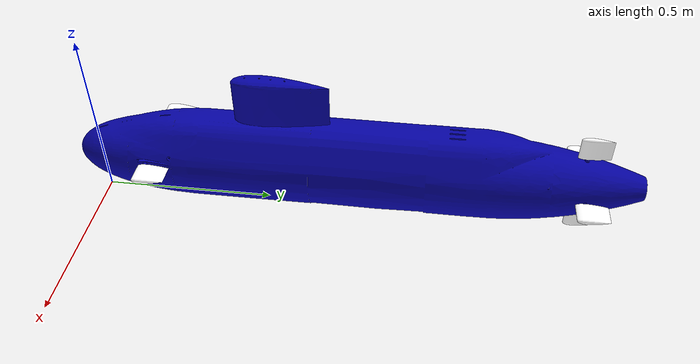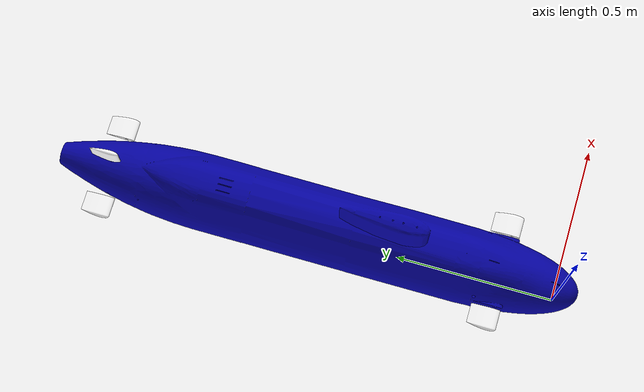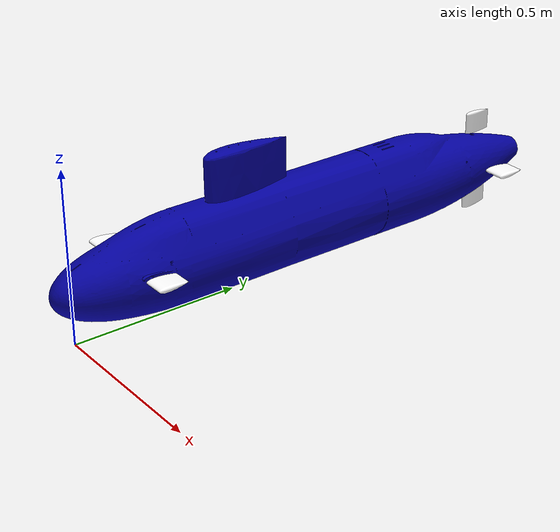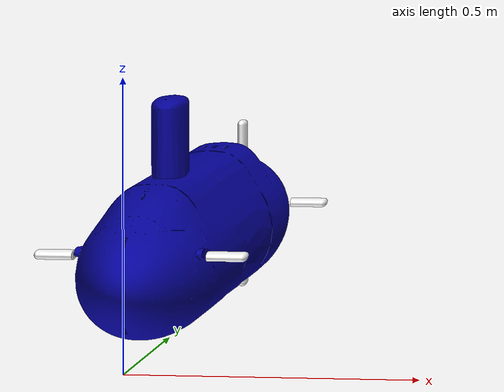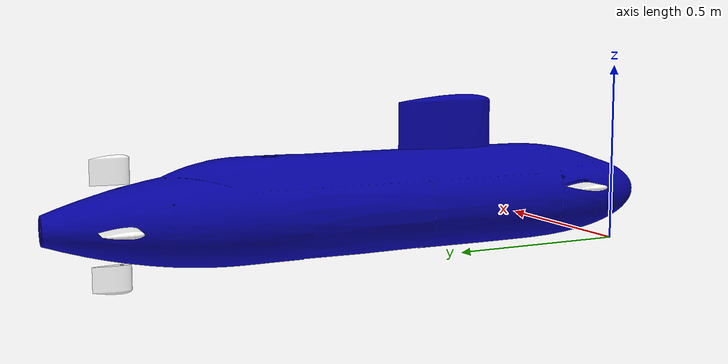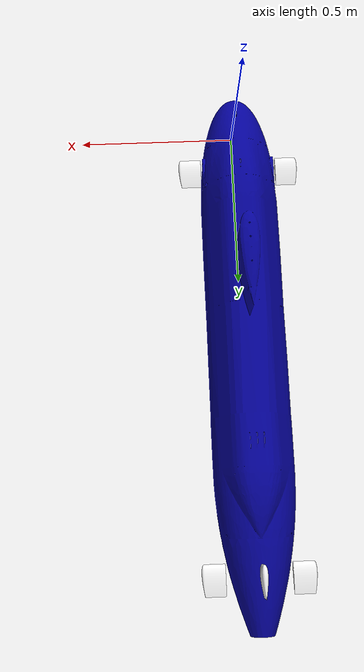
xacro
<?xml version="1.0"?>
<robot name="sous_marin" xmlns:xacro="http://ros.org/wiki/xacro">

                <!--Constantes -->

  <xacro:property name="arm_len" value="0.177"/>
  <xacro:property name="arm_height" value="0.181"/>
  <xacro:property name="arm_width" value="0.115"/>
  <xacro:property name="leg_len" value="1.4"/>
  <xacro:property name="horizontal_radius" value="0.095"/>
  <xacro:property name="horizontal_heigth" value="0.15"/>
  <xacro:property name="height_center" value="0.1475"/>
  <xacro:property name="height_radius" value="0.0925"/>

  <xacro:property name="Pi" value="3.141592"/>

     <!--Gazebo File-->
  <xacro:include filename="$(find harmonia1_simu)/model/sous_marin.gazebo"/>
        <!-- Macro Xacro inertie -->

  <xacro:macro name="default_inertial" params="mass">
    <inertial>
      <mass value="${mass}"/>
      <inertia ixx="1e-3" ixy="0.0" ixz="0.0" iyy="1e-3" iyz="0.0" izz="1e-3" />
    </inertial>
  </xacro:macro>

  <xacro:macro name="panel_param">
    <visual>
      <geometry>
        <mesh filename="$(find harmonia1_simu)/meshes/plane.dae"/>
      </geometry>
    </visual>
    <collision>
      <geometry>
        <mesh filename="$(find harmonia1_simu)/meshes/plane.dae"/>
      </geometry>
    </collision>

  </xacro:macro>

  <link name="base_link">
    <visual>
      <origin rpy="-${Pi/2} 0.0 0.0" xyz="0 0 0"/>
      <geometry>
        <mesh filename="$(find harmonia1_simu)/meshes/coque_solide_modif.dae"/>
      </geometry>
    </visual>

    <collision>
      <origin rpy="-${Pi/2} 0.0 0.0" xyz="0 0 0"/>
      <geometry>
        <mesh filename="$(find harmonia1_simu)/meshes/coque_solide_modif.dae"/>
      </geometry>
    </collision>

    <xacro:default_inertial mass="10"/>
  </link>

  <link name="base_footprint"/>
    <joint name="body_link_joint" type="fixed">
      <origin rpy="0 0 0" xyz="0 0 0"/>
      <parent link="base_footprint"/>
      <child link="base_link"/>
  </joint>

    <!--Panel avant -->
  <xacro:macro name="Panel_avant" params="prefix reflect">
      <link name="panel_avant_${prefix}">
        <xacro:panel_param/>
        <xacro:default_inertial mass="2.0"/>
      </link>
      <joint name="joint_avant_${prefix}" type="revolute">
        <axis xyz="1 0 0"/>
        <limit effort="1000.0" lower="-0.548" upper="0.548" velocity="0.5"/>
        <origin rpy="0 ${Pi*(1+reflect)/2} 0" xyz="${reflect*arm_width} ${arm_len} ${arm_height}"/>
        <parent link="base_link"/>
        <child link="panel_avant_${prefix}"/>

        <dynamics damping="0.1" friction="0.05"/>

      </joint>
  </xacro:macro>

  <xacro:Panel_avant prefix="droite" reflect="-1"/>
  <xacro:Panel_avant prefix="gauche" reflect="1"/>

  <!--Panel arriere horizontales -->
  <xacro:macro name="horizontale_panel" params="prefix reflect">
    <link name="horizontal_back_panel_${prefix}">
      <xacro:panel_param/>
      <xacro:default_inertial mass="2.0"/>

    </link>

    <joint name="horizontal_back_panel_joint_${prefix}" type="revolute">
      <axis xyz="1 0 0"/>
      <limit effort="1000.0" lower="-0.548" upper="0.548" velocity="0.5"/>
      <origin xyz="${reflect*horizontal_radius} ${leg_len} ${horizontal_heigth}" rpy="0 ${(1+reflect)*Pi/2} 0"/>
      <parent link="base_link"/>
      <child link="horizontal_back_panel_${prefix}"/>

      <dynamics damping="0.1" friction="0.05"/>

    </joint>
  </xacro:macro>

  <xacro:horizontale_panel prefix="right" reflect ="-1"/>
  <xacro:horizontale_panel prefix="left" reflect = "1"/>

        <!--Panel arriere verticales -->

  <xacro:macro name="vertical_panel" params="prefix reflect">
    <link name="panel_${prefix}">
      <xacro:panel_param/>
      <xacro:default_inertial mass="2.0"/>
    </link>
    <joint name="back_panel_joint_${prefix}" type="revolute">
      <axis xyz="1 0 0"/>
      <limit effort="1000.0" lower="-0.548" upper="0.548" velocity="0.5"/>
      <origin xyz="0.0 ${leg_len} ${height_center + reflect*height_radius}" rpy="0 ${reflect*Pi/2} 0"/>
      <parent link="base_link"/>
      <child link="panel_${prefix}"/>

      <dynamics damping="0.1" friction="0.05"/>

    </joint>
  </xacro:macro>

  <xacro:vertical_panel prefix="up" reflect ="1"/>
  <xacro:vertical_panel prefix="down" reflect = "-1"/>
</robot>
